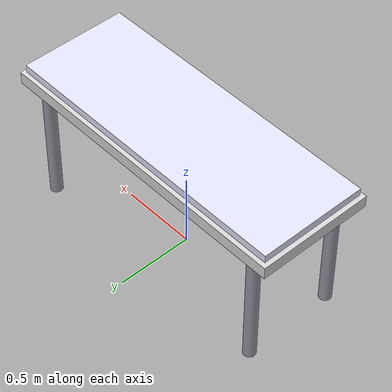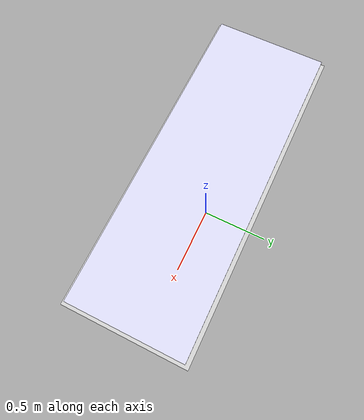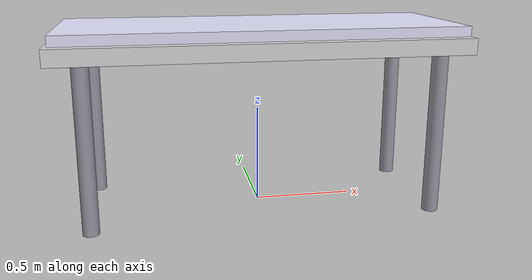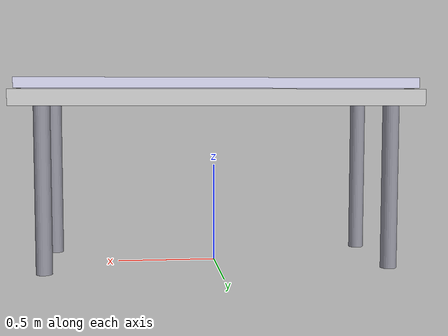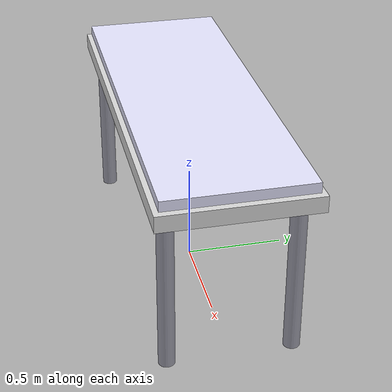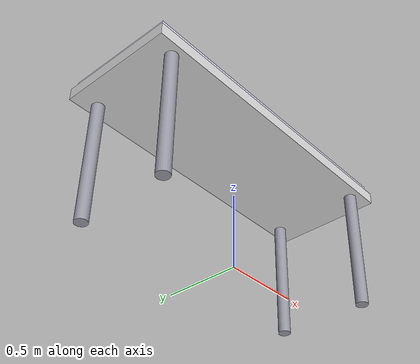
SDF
<?xml version="1.0"?>
<sdf version="1.6">
  <model name="operating_table">
    <static>true</static>

    <!-- Table top surface -->
    <link name="table_top">
      <pose>0 0 0.85 0 0 0</pose>
      <collision name="top_col">
        <geometry><box><size>2.0 0.75 0.08</size></box></geometry>
      </collision>
      <visual name="top_vis">
        <geometry><box><size>2.0 0.75 0.08</size></box></geometry>
        <material>
          <ambient>0.85 0.85 0.85 1</ambient>
          <diffuse>0.85 0.85 0.85 1</diffuse>
          <specular>0.5 0.5 0.5 1</specular>
        </material>
      </visual>
    </link>

    <!-- 4 legs -->
    <link name="leg_fl">
      <pose>0.85 0.3 0.425 0 0 0</pose>
      <collision name="c"><geometry><cylinder><radius>0.04</radius><length>0.85</length></cylinder></geometry></collision>
      <visual name="v">
        <geometry><cylinder><radius>0.04</radius><length>0.85</length></cylinder></geometry>
        <material><ambient>0.6 0.6 0.65 1</ambient><diffuse>0.6 0.6 0.65 1</diffuse></material>
      </visual>
    </link>
    <link name="leg_fr">
      <pose>0.85 -0.3 0.425 0 0 0</pose>
      <collision name="c"><geometry><cylinder><radius>0.04</radius><length>0.85</length></cylinder></geometry></collision>
      <visual name="v">
        <geometry><cylinder><radius>0.04</radius><length>0.85</length></cylinder></geometry>
        <material><ambient>0.6 0.6 0.65 1</ambient><diffuse>0.6 0.6 0.65 1</diffuse></material>
      </visual>
    </link>
    <link name="leg_bl">
      <pose>-0.85 0.3 0.425 0 0 0</pose>
      <collision name="c"><geometry><cylinder><radius>0.04</radius><length>0.85</length></cylinder></geometry></collision>
      <visual name="v">
        <geometry><cylinder><radius>0.04</radius><length>0.85</length></cylinder></geometry>
        <material><ambient>0.6 0.6 0.65 1</ambient><diffuse>0.6 0.6 0.65 1</diffuse></material>
      </visual>
    </link>
    <link name="leg_br">
      <pose>-0.85 -0.3 0.425 0 0 0</pose>
      <collision name="c"><geometry><cylinder><radius>0.04</radius><length>0.85</length></cylinder></geometry></collision>
      <visual name="v">
        <geometry><cylinder><radius>0.04</radius><length>0.85</length></cylinder></geometry>
        <material><ambient>0.6 0.6 0.65 1</ambient><diffuse>0.6 0.6 0.65 1</diffuse></material>
      </visual>
    </link>

    <!-- Thin mattress/pad on top -->
    <link name="pad">
      <pose>0 0 0.92 0 0 0</pose>
      <collision name="c"><geometry><box><size>1.95 0.70 0.05</size></box></geometry></collision>
      <visual name="v">
        <geometry><box><size>1.95 0.70 0.05</size></box></geometry>
        <material><ambient>0.9 0.9 1.0 1</ambient><diffuse>0.9 0.9 1.0 1</diffuse></material>
      </visual>
    </link>
  </model>
</sdf>
